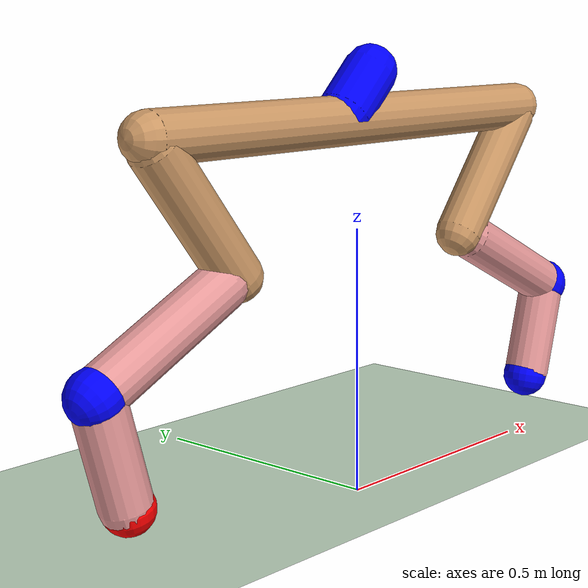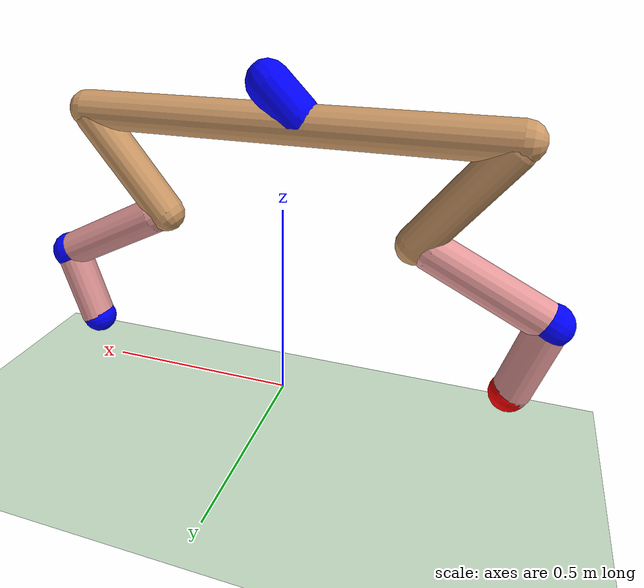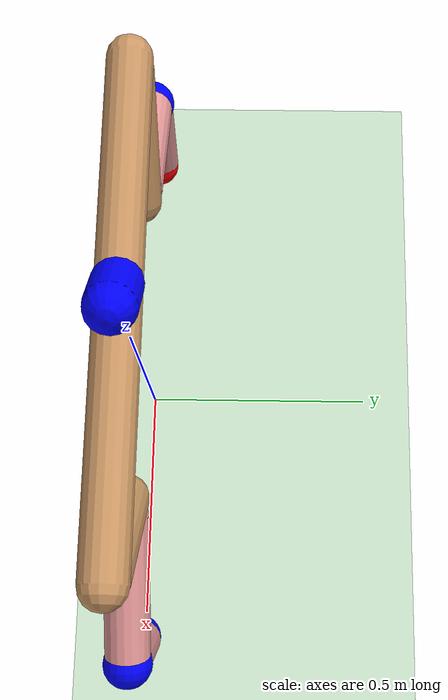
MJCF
<mujoco model="cheetah">
  <compiler angle="radian" coordinate="local" inertiafromgeom="true" settotalmass="14" />
  <default>
    <joint armature=".1" damping=".01" limited="true" solimplimit="0 .8 .03" solreflimit=".02 1"
      stiffness="8" />
    <geom conaffinity="0" condim="3" contype="1" friction=".4 .1 .1" rgba="0.8 0.6 .4 1"
      solimp="0.0 0.8 0.01" solref="0.02 1" />
    <motor ctrllimited="true" ctrlrange="-1 1" />
  </default>
  <size nstack="300000" nuser_geom="1" />
  <option gravity="0 0 -9.81" timestep="0.01" />
  <asset>
    <texture builtin="gradient" height="100" rgb1="1 1 1" rgb2="0 0 0" type="skybox" width="100" />
    <texture builtin="flat" height="1278" mark="cross" markrgb="1 1 1" name="texgeom" random="0.01"
      rgb1="0.8 0.6 0.4" rgb2="0.8 0.6 0.4" type="cube" width="127" />
    <texture builtin="checker" height="100" name="texplane" rgb1="0 0 0" rgb2="0.8 0.8 0.8"
      type="2d" width="100" />
    <material name="MatPlane" reflectance="0.5" shininess="1" specular="1" texrepeat="60 60"
      texture="texplane" />
    <material name="geom" texture="texgeom" texuniform="true" />
  </asset>
  <worldbody>
    <light cutoff="100" diffuse="1 1 1" dir="-0 0 -1.3" directional="true" exponent="1"
      pos="0 0 1.3" specular=".1 .1 .1" />
    <geom conaffinity="1" condim="3" material="MatPlane" name="floor" pos="0 0 0"
      rgba="0.8 0.9 0.8 1" size="40 40 40" type="plane" />
    <body name="torso" pos="0 0 .7">
      <camera name="track" mode="trackcom" pos="0 -3 0.3" xyaxes="1 0 0 0 0 1" />
      <site name="velocity_arrow" type="capsule" pos="0 0 0.05" size="0.05 0.05 0.1"
        axisangle="0 1 0 0.785" rgba="0 0 1 1" />
      <site name="command_arrow" type="capsule" pos="0 0 0.05" size="0.05 0.05 0.1"
        axisangle="0 1 0 0.785" rgba="0 1 0 1" />
      <joint armature="0" axis="1 0 0" damping="0" limited="false" name="rootx" pos="0 0 0"
        stiffness="0" type="slide" />
      <joint armature="0" axis="0 0 1" damping="0" limited="false" name="rootz" pos="0 0 0"
        stiffness="0" type="slide" />
      <joint armature="0" axis="0 1 0" damping="0" limited="false" name="rooty" pos="0 0 0"
        stiffness="0" type="hinge" />
      <geom fromto="-.5 0 0 .5 0 0" name="torso" size="0.046" type="capsule" />
      <body name="bthigh" pos="-.5 0 0">
        <joint axis="0 1 0" damping="6" name="bthigh" pos="0 0 0" range="-.52 1.05" stiffness="240"
          type="hinge" />
        <geom axisangle="0 1 0 -3.8" name="bthigh" pos=".1 0 -.13" size="0.046 .145" type="capsule" />
        <body name="bshin" pos=".16 0 -.25">
          <joint axis="0 1 0" damping="4.5" name="bshin" pos="0 0 0" range="-.785 .785"
            stiffness="180" type="hinge" />
          <geom axisangle="0 1 0 -2.03" name="bshin" pos="-.14 0 -.07" rgba="0.9 0.6 0.6 1"
            size="0.046 .15" type="capsule" />
          <site name="bshin" axisangle="0 1 0 -2.03" pos="-.28 0 -.14" size="0.05" rgba="0 0 1 1" />
          <body name="bfoot" pos="-.28 0 -.14">
            <joint axis="0 1 0" damping="3" name="bfoot" pos="0 0 0" range="-.4 .785"
              stiffness="120" type="hinge" />
            <geom axisangle="0 1 0 -.27" name="bfoot" pos=".03 0 -.097" rgba="0.9 0.6 0.6 1"
              size="0.046 .094" type="capsule" />
            <site name="bfoot" axisangle="0 1 0 -.27" pos=".06 0 -.194" size="0.046" rgba="1 0 0 1" />
          </body>
        </body>
      </body>
      <body name="fthigh" pos=".5 0 0">
        <joint axis="0 1 0" damping="6" name="fthigh" pos="0 0 0" range="-.52 1.05" stiffness="240"
          type="hinge" />
        <geom axisangle="0 1 0 3.8" name="fthigh" pos="-.1 0 -.13" size="0.046 .145" type="capsule" />
        <body name="fshin" pos="-.16 0 -.25">
          <joint axis="0 1 0" damping="4.5" name="fshin" pos="0 0 0" range="-.785 .785"
            stiffness="180" type="hinge" />
          <geom axisangle="0 1 0 2.03" name="fshin" pos=".14 0 -.07" rgba="0.9 0.6 0.6 1"
            size="0.046 .15" type="capsule" />
          <site name="fshin" axisangle="0 1 0 2.03" pos=".28 0 -.14" size="0.05" rgba="0 0 1 1" />
          <body name="ffoot" pos=".28 0 -.14">
            <joint axis="0 1 0" damping="3" name="ffoot" pos="0 0 0" range="-.4 .785"
              stiffness="120" type="hinge" />
            <geom axisangle="0 1 0 .27" name="ffoot" pos="-.03 0 -.097" rgba="0.9 0.6 0.6 1"
              size="0.046 .094" type="capsule" />
            <site name="ffoot" axisangle="0 1 0 .27" pos="-.06 0 -.194" size="0.046" rgba="0 0 1 1" />
          </body>
        </body>
      </body>
    </body>
  </worldbody>
  <actuator>
    <motor gear="120" joint="bthigh" name="bthigh" />
    <motor gear="90" joint="bshin" name="bshin" />
    <motor gear="60" joint="bfoot" name="bfoot" />
    <motor gear="120" joint="fthigh" name="fthigh" />
    <motor gear="90" joint="fshin" name="fshin" />
    <motor gear="60" joint="ffoot" name="ffoot" />
  </actuator>
  <sensor>
    <touch name="fshin" noise="0.01" site="fshin" />
    <touch name="ffoot" noise="0.01" site="ffoot" />
    <touch name="bshin" noise="0.01" site="bshin" />
    <touch name="bfoot" noise="0.01" site="bfoot" />
  </sensor>
</mujoco>
